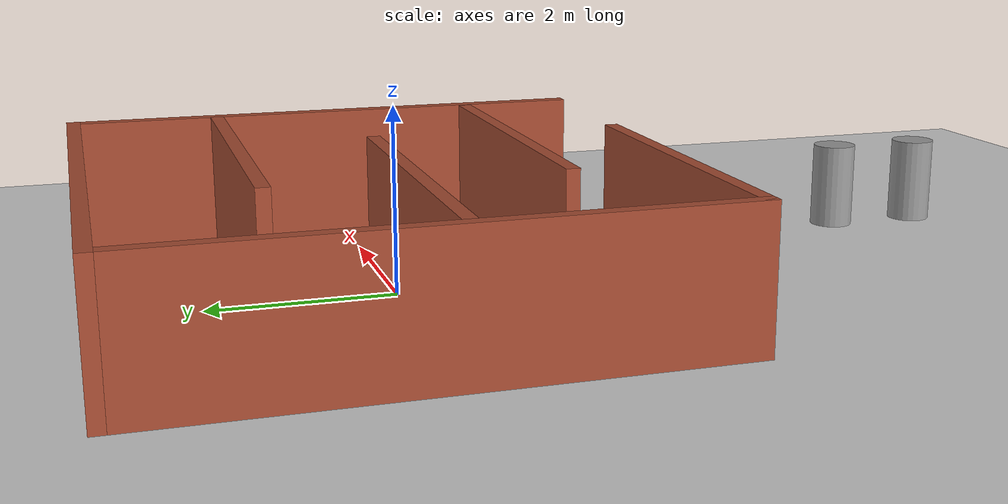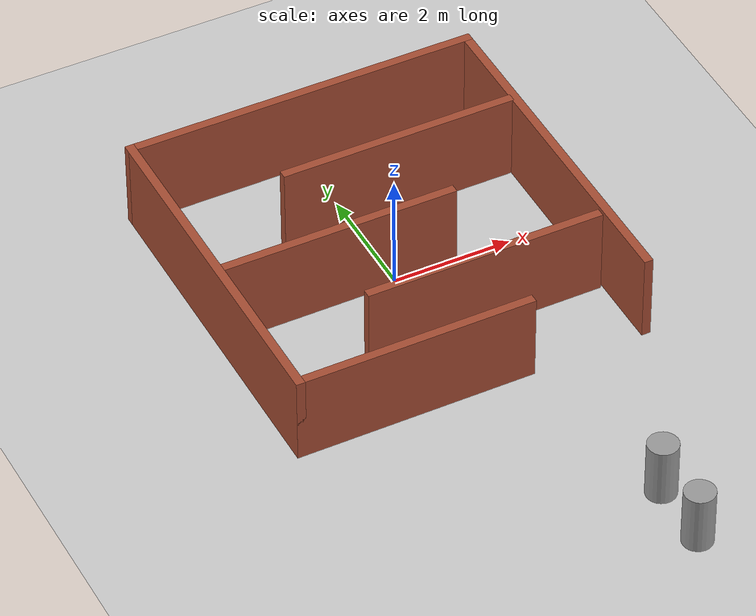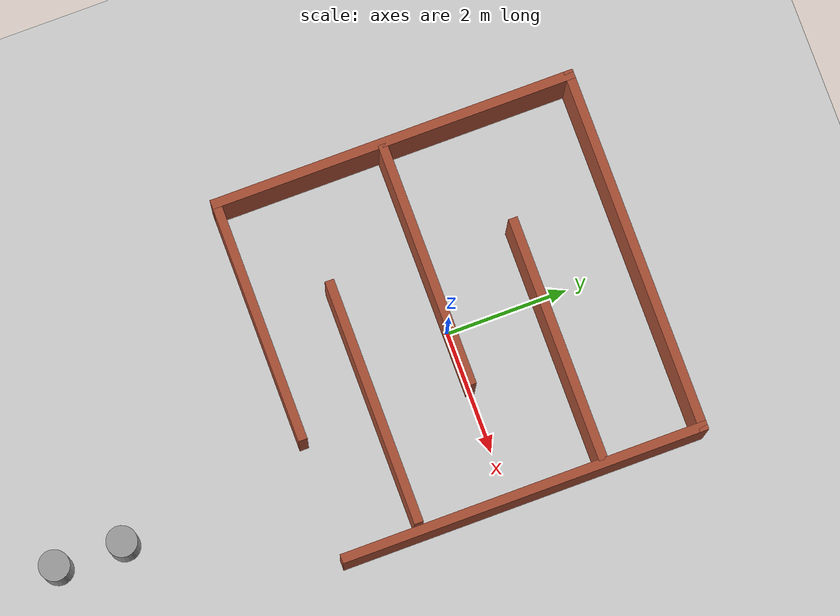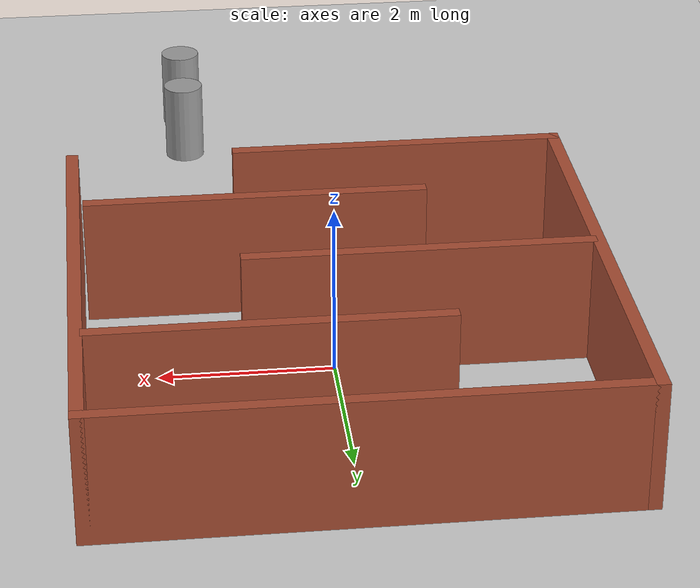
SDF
<sdf version="1.6">
 <world name="default">
  <light name="sun" type="directional">
   <pose>0 0 10 0 -0 0</pose>
   <diffuse>0.8 0.8 0.8 1</diffuse>
   <specular>0.2 0.2 0.2 1</specular>
   <attenuation>
    <range>1000</range>
    <constant>0.9</constant>
    <linear>0.01</linear>
    <quadratic>0.001</quadratic>
   </attenuation>
   <direction>-0.5 0.1 -0.9</direction>
  </light>
  <model name="ground_plane">
   <static>1</static>
   <link name="link">
    <collision name="collision">
     <geometry><plane><normal>0 0 1</normal><size>100 100</size></plane></geometry>
     <surface>
      <contact><collide_bitmask>65535</collide_bitmask></contact>
      <friction><ode><mu>100</mu><mu2>50</mu2></ode></friction>
     </surface>
    </collision>
    <visual name="visual">
     <cast_shadows>0</cast_shadows>
     <geometry><plane><normal>0 0 1</normal><size>100 100</size></plane></geometry>
     <material>
      <script><uri>file://media/materials/scripts/gazebo.material</uri><name>Gazebo/Grey</name></script>
     </material>
    </visual>
   </link>
  </model>
  <physics name="default_physics" default="0" type="ode">
   <real_time_update_rate>1000</real_time_update_rate>
   <max_step_size>0.001</max_step_size>
   <real_time_factor>1</real_time_factor>
   <ode>
    <solver>
     <type>quick</type>
     <iters>150</iters>
     <precon_iters>0</precon_iters>
     <sor>1.4</sor>
     <use_dynamic_moi_rescaling>1</use_dynamic_moi_rescaling>
    </solver>
    <constraints>
     <cfm>1e-05</cfm>
     <erp>0.2</erp>
     <contact_max_correcting_vel>2000</contact_max_correcting_vel>
     <contact_surface_layer>0.01</contact_surface_layer>
    </constraints>
   </ode>
  </physics>
  <scene><ambient>0.4 0.4 0.4 1</ambient><background>0.7 0.7 0.7 1</background><shadows>1</shadows></scene>
  <gravity>0 0 -9.8</gravity>
  <magnetic_field>6e-06 2.3e-05 -4.2e-05</magnetic_field>
  <atmosphere type="adiabatic"/>
  <spherical_coordinates>
   <surface_model>EARTH_WGS84</surface_model>
   <latitude_deg>0</latitude_deg>
   <longitude_deg>0</longitude_deg>
   <elevation>0</elevation>
   <heading_deg>0</heading_deg>
  </spherical_coordinates>
  <model name="skinny_cylinder_0">
   <link name="link">
    <inertial>
     <mass>1</mass>
     <inertia><ixx>0.145833</ixx><ixy>0</ixy><ixz>0</ixz><iyy>0.145833</iyy><iyz>0</iyz><izz>0.125</izz></inertia>
    </inertial>
    <pose>-0.155373 -0.556277 0 0 -0 0</pose>
    <visual name="visual">
     <geometry><cylinder><radius>0.25</radius><length>1</length></cylinder></geometry>
     <material>
      <script><name>Gazebo/Grey</name><uri>file://media/materials/scripts/gazebo.material</uri></script>
      <shader type="pixel"/>
     </material>
    </visual>
    <collision name="collision">
     <geometry><cylinder><radius>0.25</radius><length>1</length></cylinder></geometry>
     <surface>
      <friction>
       <ode><mu>1</mu><mu2>1</mu2><fdir1>0 0 0</fdir1><slip1>0</slip1><slip2>0</slip2></ode>
       <torsional>
        <coefficient>1</coefficient>
        <patch_radius>0</patch_radius>
        <surface_radius>0</surface_radius>
        <use_patch_radius>1</use_patch_radius>
        <ode><slip>0</slip></ode>
       </torsional>
      </friction>
      <bounce><restitution_coefficient>0</restitution_coefficient><threshold>1e+06</threshold></bounce>
      <contact>
       <collide_without_contact>0</collide_without_contact>
       <collide_without_contact_bitmask>1</collide_without_contact_bitmask>
       <collide_bitmask>1</collide_bitmask>
       <ode>
        <soft_cfm>0</soft_cfm>
        <soft_erp>0.2</soft_erp>
        <kp>1e+13</kp>
        <kd>1</kd>
        <max_vel>0.01</max_vel>
        <min_depth>0</min_depth>
       </ode>
       <bullet>
        <split_impulse>1</split_impulse>
        <split_impulse_penetration_threshold>-0.01</split_impulse_penetration_threshold>
        <soft_cfm>0</soft_cfm>
        <soft_erp>0.2</soft_erp>
        <kp>1e+13</kp>
        <kd>1</kd>
       </bullet>
      </contact>
     </surface>
    </collision>
   </link>
   <static>0</static>
   <pose>1.54946 -6.44817 0.499991 -0 -0 -0</pose>
  </model>
  <model name="skinny_cylinder_1">
   <link name="link">
    <inertial>
     <mass>1</mass>
     <inertia><ixx>0.145833</ixx><ixy>0</ixy><ixz>0</ixz><iyy>0.145833</iyy><iyz>0</iyz><izz>0.125</izz></inertia>
    </inertial>
    <pose>-0.155373 -0.556277 0 0 -0 0</pose>
    <visual name="visual">
     <geometry><cylinder><radius>0.25</radius><length>1</length></cylinder></geometry>
     <material>
      <script><name>Gazebo/Grey</name><uri>file://media/materials/scripts/gazebo.material</uri></script>
      <shader type="pixel"/>
     </material>
    </visual>
    <collision name="collision">
     <geometry><cylinder><radius>0.25</radius><length>1</length></cylinder></geometry>
     <surface>
      <friction>
       <ode><mu>1</mu><mu2>1</mu2><fdir1>0 0 0</fdir1><slip1>0</slip1><slip2>0</slip2></ode>
       <torsional>
        <coefficient>1</coefficient>
        <patch_radius>0</patch_radius>
        <surface_radius>0</surface_radius>
        <use_patch_radius>1</use_patch_radius>
        <ode><slip>0</slip></ode>
       </torsional>
      </friction>
      <bounce><restitution_coefficient>0</restitution_coefficient><threshold>1e+06</threshold></bounce>
      <contact>
       <collide_without_contact>0</collide_without_contact>
       <collide_without_contact_bitmask>1</collide_without_contact_bitmask>
       <collide_bitmask>1</collide_bitmask>
       <ode>
        <soft_cfm>0</soft_cfm>
        <soft_erp>0.2</soft_erp>
        <kp>1e+13</kp>
        <kd>1</kd>
        <max_vel>0.01</max_vel>
        <min_depth>0</min_depth>
       </ode>
       <bullet>
        <split_impulse>1</split_impulse>
        <split_impulse_penetration_threshold>-0.01</split_impulse_penetration_threshold>
        <soft_cfm>0</soft_cfm>
        <soft_erp>0.2</soft_erp>
        <kp>1e+13</kp>
        <kd>1</kd>
       </bullet>
      </contact>
     </surface>
    </collision>
   </link>
   <static>0</static>
   <pose>1.55899 -5.34325 0.499991 -0 -0 -0</pose>
  </model>
  <audio><device>default</device></audio>
  <model name="zig-zag">
   <pose>-0.054164 0.184068 0 0 -0 0</pose>
   <link name="Wall_0">
    <collision name="Wall_0_Collision">
     <geometry><box><size>6 0.15 1.5</size></box></geometry>
     <pose>0 0 0.75 0 -0 0</pose>
    </collision>
    <visual name="Wall_0_Visual">
     <pose>0 0 0.75 0 -0 0</pose>
     <geometry><box><size>6 0.15 1.5</size></box></geometry>
     <material>
      <script><uri>file://media/materials/scripts/gazebo.material</uri><name>Gazebo/Bricks</name></script>
      <ambient>1 1 1 1</ambient>
     </material>
     <meta><layer>0</layer></meta>
    </visual>
    <pose>0 2.925 0 0 -0 0</pose>
   </link>
   <link name="Wall_13">
    <collision name="Wall_13_Collision">
     <geometry><box><size>4 0.15 1.5</size></box></geometry>
     <pose>0 0 0.75 0 -0 0</pose>
    </collision>
    <visual name="Wall_13_Visual">
     <pose>0 0 0.75 0 -0 0</pose>
     <geometry><box><size>4 0.15 1.5</size></box></geometry>
     <material>
      <script><uri>file://media/materials/scripts/gazebo.material</uri><name>Gazebo/Bricks</name></script>
      <ambient>1 1 1 1</ambient>
     </material>
     <meta><layer>0</layer></meta>
    </visual>
    <pose>0.879 1.31 0 0 -0 3.14159</pose>
   </link>
   <link name="Wall_17">
    <collision name="Wall_17_Collision">
     <geometry><box><size>4 0.15 1.5</size></box></geometry>
     <pose>0 0 0.75 0 -0 0</pose>
    </collision>
    <visual name="Wall_17_Visual">
     <pose>0 0 0.75 0 -0 0</pose>
     <geometry><box><size>4 0.15 1.5</size></box></geometry>
     <material>
      <script><uri>file://media/materials/scripts/gazebo.material</uri><name>Gazebo/Bricks</name></script>
      <ambient>1 1 1 1</ambient>
     </material>
     <meta><layer>0</layer></meta>
    </visual>
    <pose>-0.905 -0.185 0 0 -0 0</pose>
   </link>
   <link name="Wall_21">
    <collision name="Wall_21_Collision">
     <geometry><box><size>4 0.15 1.5</size></box></geometry>
     <pose>0 0 0.75 0 -0 0</pose>
    </collision>
    <visual name="Wall_21_Visual">
     <pose>0 0 0.75 0 -0 0</pose>
     <geometry><box><size>4 0.15 1.5</size></box></geometry>
     <material>
      <script><uri>file://media/materials/scripts/gazebo.material</uri><name>Gazebo/Bricks</name></script>
      <ambient>1 1 1 1</ambient>
     </material>
     <meta><layer>0</layer></meta>
    </visual>
    <pose>0.813 -1.692 0 0 -0 3.14159</pose>
   </link>
   <link name="Wall_4">
    <collision name="Wall_4_Collision">
     <geometry><box><size>6 0.15 1.5</size></box></geometry>
     <pose>0 0 0.75 0 -0 0</pose>
    </collision>
    <visual name="Wall_4_Visual">
     <pose>0 0 0.75 0 -0 0</pose>
     <geometry><box><size>6 0.15 1.5</size></box></geometry>
     <material>
      <script><uri>file://media/materials/scripts/gazebo.material</uri><name>Gazebo/Bricks</name></script>
      <ambient>1 1 1 1</ambient>
     </material>
     <meta><layer>0</layer></meta>
    </visual>
    <pose>-2.925 0 0 0 -0 -1.5708</pose>
   </link>
   <link name="Wall_5">
    <collision name="Wall_5_Collision">
     <geometry><box><size>4 0.15 1.5</size></box></geometry>
     <pose>0 0 0.75 0 -0 0</pose>
    </collision>
    <visual name="Wall_5_Visual">
     <pose>0 0 0.75 0 -0 0</pose>
     <geometry><box><size>4 0.15 1.5</size></box></geometry>
     <material>
      <script><uri>file://media/materials/scripts/gazebo.material</uri><name>Gazebo/Bricks</name></script>
      <ambient>1 1 1 1</ambient>
     </material>
     <meta><layer>0</layer></meta>
    </visual>
    <pose>-1 -2.925 0 0 -0 0</pose>
   </link>
   <link name="Wall_8">
    <collision name="Wall_8_Collision">
     <geometry><box><size>6 0.15 1.5</size></box></geometry>
     <pose>0 0 0.75 0 -0 0</pose>
    </collision>
    <visual name="Wall_8_Visual">
     <pose>0 0 0.75 0 -0 0</pose>
     <geometry><box><size>6 0.15 1.5</size></box></geometry>
     <material>
      <script><uri>file://media/materials/scripts/gazebo.material</uri><name>Gazebo/Bricks</name></script>
      <ambient>1 1 1 1</ambient>
     </material>
     <meta><layer>0</layer></meta>
    </visual>
    <pose>2.925 0 0 0 -0 -1.5708</pose>
   </link>
   <static>1</static>
  </model>
 </world>
</sdf>
